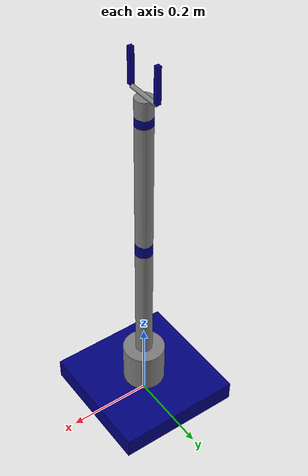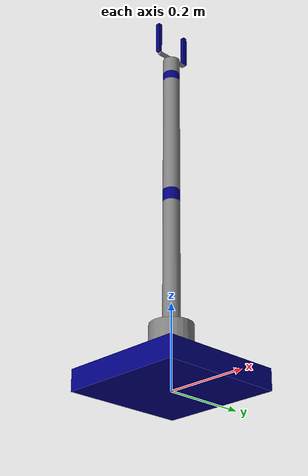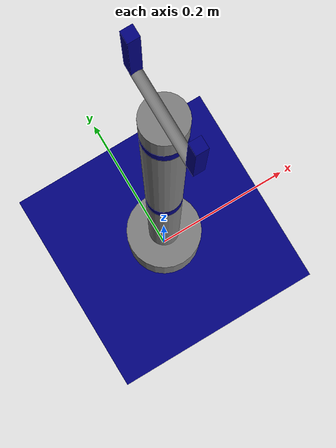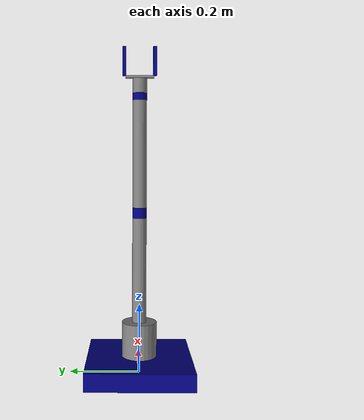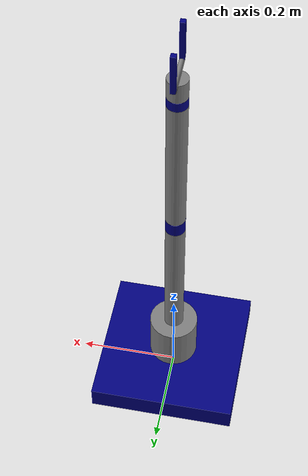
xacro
<?xml version="1.0"?>
<robot xmlns:xacro="http://www.ros.org/wiki/xacro" name="six_dof_arm">
    <xacro:arg name="initial_positions_file" default="initial_positions.yaml" />

    <!-- Import six_dof_arm urdf file -->
    <xacro:include filename="$(find six_dof_arm)/urdf/arm.urdf.xacro" />

    <!-- Import control_xacro -->
    <xacro:include filename="six_dof_arm.ros2_control.xacro" />

    <xacro:six_dof_arm_ros2_control name="FakeSystem" initial_positions_file="$(arg initial_positions_file)"/>

</robot>

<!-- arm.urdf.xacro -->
<robot xmlns:xacro="http://www.ros.org/wiki/xacro" name="six_dof_arm">
    <xacro:include filename="$(find six_dof_arm)/urdf/common.xacro" />
    <xacro:include filename="$(find six_dof_arm)/urdf/arm.xacro" />
    <xacro:include filename="$(find six_dof_arm)/urdf/gripper.xacro"/>
    <xacro:include filename="$(find six_dof_arm)/urdf/six_dof_arm.ros2_control.xacro"/>

</robot>

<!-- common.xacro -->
<robot xmlns:xacro="http://www.ros.org/wiki/xacro">

    <xacro:property name="base_mass" value="0.5" />
    <xacro:property name="base_len" value="0.3" />
    <xacro:property name="base_wid" value="0.3" />
    <xacro:property name="base_hei" value="0.05" />

    <xacro:property name="static_mass" value="0.1" />
    <xacro:property name="static_rad" value="0.02" />
    <xacro:property name="static_len" value="0.02" />

    <xacro:property name="shoulder_link_mass" value="0.3" />
    <xacro:property name="shoulder_link_rad" value="0.05" />
    <xacro:property name="shoulder_link_len" value="0.1" />

    <xacro:property name="arm_mass" value="0.2" />
    <xacro:property name="arm_rad" value="0.02" />
    <xacro:property name="arm_len" value="0.3" />

    <xacro:property name="elbow_link_mass"  value="${static_mass}" />
    <xacro:property name="elbow_link_rad"   value="${static_rad}" />
    <xacro:property name="elbow_link_len"   value="${static_len * 1.5}" />

    <xacro:property name="forearm_link_mass" value="${arm_mass}" />
    <xacro:property name="forearm_link_rad" value="${arm_rad}" />
    <xacro:property name="forearm_link_len" value="${arm_len}" />

    <xacro:property name="wrist_link_mass"  value="${static_mass}" />
    <xacro:property name="wrist_link_rad"   value="${static_rad}" />
    <xacro:property name="wrist_link_len"   value="${static_len}"  />

    <xacro:property name="hand_link_mass" value="${static_mass}" />
    <xacro:property name="hand_link_rad" value="${static_rad}" />
    <xacro:property name="hand_link_len" value="${static_len}" />

    <xacro:property name="gripper_mass" value="0.1" />
    <xacro:property name="gripper_rad" value="0.005" />
    <xacro:property name="gripper_len" value="0.08" />

    <xacro:property name="gripper_finger_len" value="${2 * gripper_rad}"/>
    <xacro:property name="gripper_finger_wid" value="${2 * gripper_rad}"/>
    <xacro:property name="gripper_finger_hei" value="0.08"/>

    <material name="blue">
        <color rgba="0 0 0.5 1" />
    </material>

    <material name="grey">
        <color rgba="0.5 0.5 0.5 1" />
    </material>

    <xacro:macro name="box_shape" params="link_name m x y z o_xyz o_rpy">
        <link name="${link_name}">
            <visual>
                <geometry>
                    <box size="${x} ${y} ${z}"/>
                </geometry>
                <origin xyz="${o_xyz}" rpy="${o_rpy}"/>
                <material name="blue" />

            </visual>

            <collision>
                <geometry>
                    <box size="${x} ${y} ${z}"/>
                </geometry>
                <origin xyz="${o_xyz}" rpy="${o_rpy}"/>
            </collision>

            <inertial>
                <mass value="${m}" />
                <origin xyz="${o_xyz}" rpy="${o_rpy}" />
                <inertia ixx="${(m/12) * (y*y + z*z)}" ixy="0" ixz="0"
                iyy="${(m/12) * (x*x + z*z)}" iyz="0"
                izz="${(m/12) * (x*x + y*y)}" />
            </inertial>
        </link>

    </xacro:macro>

    <xacro:macro name="cylinder_shape" params="link_name m r l o_xyz o_rpy color">
        <link name="${link_name}">

            <visual>
                <geometry>
                    <cylinder radius="${r}" length="${l}"/>
                </geometry>
                <origin xyz="${o_xyz}" rpy="${o_rpy}"/>
                <material name="${color}"/>

            </visual>

            <collision>
                <geometry>
                    <cylinder radius="${r}" length="${l}"/>
                </geometry>
                <origin xyz="${o_xyz}" rpy="${o_rpy}"/>
            </collision>

            <inertial>
                <mass value="${m}" />
                <origin xyz="${o_xyz}" rpy="${o_rpy}" />
                <inertia ixx="${(m/12) * (3*r*r + l*l)}" ixy="0" ixz="0"
                iyy="${(m/12) * (3*r*r + l*l)}" iyz="0"
                izz="${(m/2) * (r*r)}" />
            </inertial>
        </link>
    </xacro:macro>

</robot>

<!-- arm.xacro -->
<robot xmlns:xacro="http://www.ros.org/wiki/xacro">

    <xacro:box_shape link_name="base_link" m="${base_mass}" x="${base_len}" y="${base_wid}" z="${base_hei}" o_xyz="0 0 ${base_hei / 2}" o_rpy="0 0 0" />
    <xacro:cylinder_shape link_name="shoulder_link" m="${shoulder_link_mass}" r="${shoulder_link_rad}" l="${shoulder_link_len}" o_xyz="0 0 ${shoulder_link_len / 2}" o_rpy="0 0 0" color="grey"/>
    <xacro:cylinder_shape link_name="arm_link" m="${arm_mass}" r="${arm_rad}" l="${arm_len}" o_xyz="0 0 ${arm_len / 2}" o_rpy="0 0 0" color="grey"/>
    <xacro:cylinder_shape link_name="elbow_link" m="${elbow_link_mass}" r="${elbow_link_rad}" l="${elbow_link_len}" o_xyz="0 0 ${ elbow_link_len / 2}" o_rpy="0 0 0" color="blue"/>
    <xacro:cylinder_shape link_name="forearm_link" m="${forearm_link_mass}" r="${forearm_link_rad}" l="${forearm_link_len}" o_xyz="0 0 ${forearm_link_len / 2}" o_rpy="0 0 0" color="grey"/>
    <xacro:cylinder_shape link_name="wrist_link" m="${wrist_link_mass}" r="${wrist_link_rad}" l="${wrist_link_len}" o_xyz="0 0 ${wrist_link_len / 2}" o_rpy="0 0 0" color="blue"/>
    <xacro:cylinder_shape link_name="hand_link" m="${hand_link_mass}" r="${hand_link_rad}" l="${hand_link_len * 2}" o_xyz="0 0 ${hand_link_len}" o_rpy="0 0 0" color="grey"/>
    <link name="tool_link" />

    <!-- world to base link -->

    <!-- base link to base motor Joint 1 -->
    <joint name="joint1" type="revolute">
        <origin xyz="0.0 0.0 ${base_hei}" rpy="0.0 0.0 0.0"/>
        <parent link="base_link"/>
        <child link="shoulder_link"/>
        <axis xyz="0.0 0.0 1.0"/>
        <limit lower="-${pi}" upper="${pi}" effort="1000.0" velocity="1.0"/>
    </joint>

    <joint name="joint2" type="revolute">
        <origin xyz="0.0 0.0 ${shoulder_link_len}" rpy="0.0 0.0 0.0"/>
        <parent link="shoulder_link"/>
        <child link="arm_link"/>
        <axis xyz="0.0 1.0 0.0"/>
        <limit lower="0.0" upper="${pi/3}" effort="1000.0" velocity="1.0"/>
    </joint>

   <joint name="joint_3" type="revolute">
    <origin xyz="0 0 ${arm_len} " rpy="0.0 0.0 0.0"/>
    <parent link="arm_link"/>
    <child link="elbow_link"/>
    <axis xyz="0.0 1.0 0.0"/>
    <limit lower="0.0" upper="${pi/3}" effort="1000.0" velocity="1.0"/>

    </joint>

     <joint name="joint4" type="revolute">
        <origin xyz="0.0 0.0 ${elbow_link_len}" rpy="0.0 0.0 0.0"/>
        <parent link="elbow_link"/>
        <child link="forearm_link"/>
        <axis xyz="0.0 0.0 1.0"/>
        <limit lower="-${pi}" upper="${pi}" effort="1000.0" velocity="1.0"/>
    </joint>

    <joint name="joint5" type="revolute">
        <origin xyz="0.0 0.0 ${forearm_link_len}" rpy="0.0 0.0 0.0"/>
        <parent link="forearm_link"/>
        <child link="wrist_link"/>
        <axis xyz="0.0 1.0 0.0"/>
        <limit lower="-${pi/4}" upper="${pi/4}" effort="1000.0" velocity="1.0"/>
    </joint>

    <joint name="joint6" type="continuous">
        <origin xyz="0.0 0.0 ${hand_link_len}" rpy="0.0 0.0 0.0"/>
        <parent link="wrist_link"/>
        <child link="hand_link"/>
        <axis xyz="0.0 0.0 1.0"/>
    </joint>

    <joint name="hand_tool_joint" type="fixed">
        <origin xyz="0.0 0.0 0.04" rpy="0.0 0.0 0.0"/>
        <parent link="hand_link"/>
        <child link="tool_link"/>
    </joint>

</robot>

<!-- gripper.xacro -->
<robot xmlns:xacro="http://www.ros.org/wiki/xacro" >
    <xacro:cylinder_shape link_name="gripper_base" m="${gripper_mass}" r="${gripper_rad}" l="${gripper_len}" o_xyz="0 0 0" o_rpy="0 0 0" color="grey"/>

    <xacro:box_shape link_name="gripper_left" m="${gripper_mass}" x="${gripper_finger_len}" y="${gripper_finger_wid}" z="${gripper_finger_hei}" o_xyz="0 0 0" o_rpy="0 0 0" />
    <xacro:box_shape link_name="gripper_right" m="${gripper_mass}" x="${gripper_finger_len}" y="${gripper_finger_wid}" z="${gripper_finger_hei}" o_xyz="0 0 0" o_rpy="0 0 0" />

    <!-- wrist to gripper base -->
    <joint name="wrist_gripper_base" type="fixed">
        <origin xyz="0.0 0.0 ${gripper_rad}" rpy="${pi/2} 0.0 0.0"/>
        <parent link="tool_link"/>
        <child link="gripper_base"/>
    </joint>

    <joint name="gripper_base_gripper_left" type="prismatic">
        <origin xyz="0.0 ${(gripper_len + gripper_rad)/ 2 } -${(gripper_len + gripper_rad)/ 2 }" rpy="${pi/2} 0.0 0.0"/>
        <parent link="gripper_base"/>
        <child link="gripper_left"/>
        <axis xyz="0.0 1.0 0.0"/>
        <limit lower="0.0" upper="${gripper_len / 2 - static_rad / 2}" effort="100.0" velocity="0.1"/>
    </joint>

    <joint name="gripper_base_gripper_right" type="prismatic">
        <origin xyz="0.0 ${(gripper_len + gripper_rad)/ 2 } ${(gripper_len + gripper_rad)/ 2 }" rpy="${3*pi/2} 0.0 0.0"/>
        <parent link="gripper_base"/>
        <child link="gripper_right"/>
        <axis xyz="0.0 1.0 0.0"/>
        <mimic joint="gripper_base_gripper_left" multiplier="1.0" />
        <limit lower="0.0" upper="${gripper_len / 2 - static_rad / 2}" effort="100.0" velocity="0.1"/>
    </joint>
</robot>
